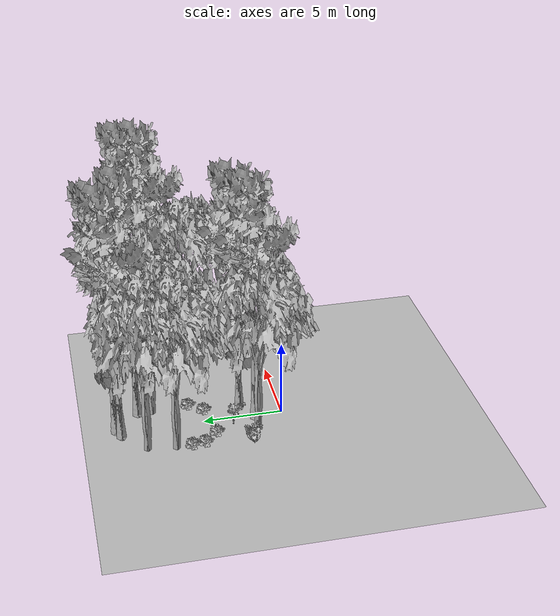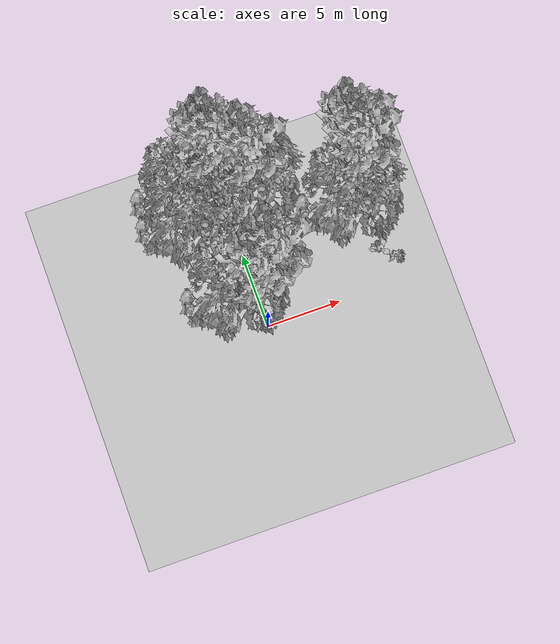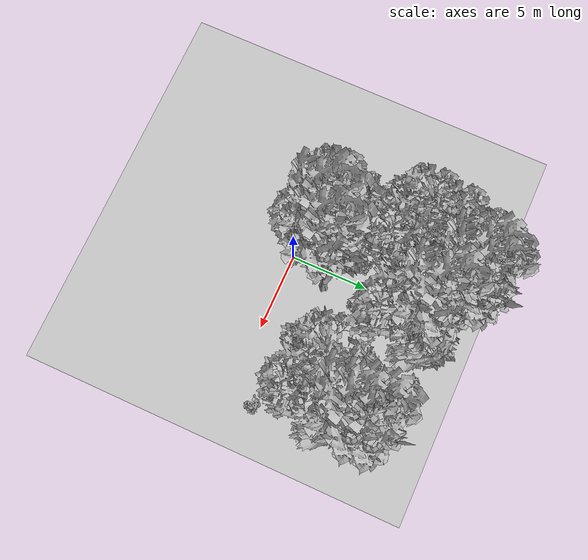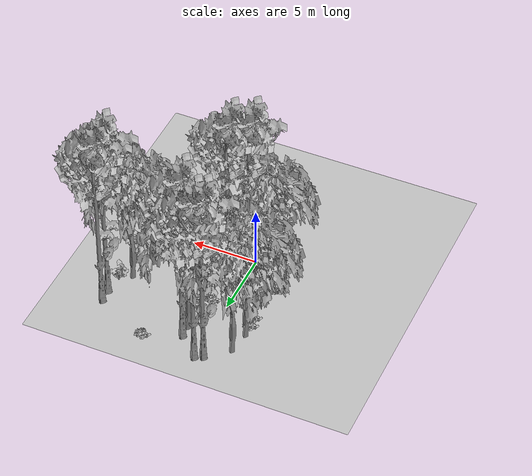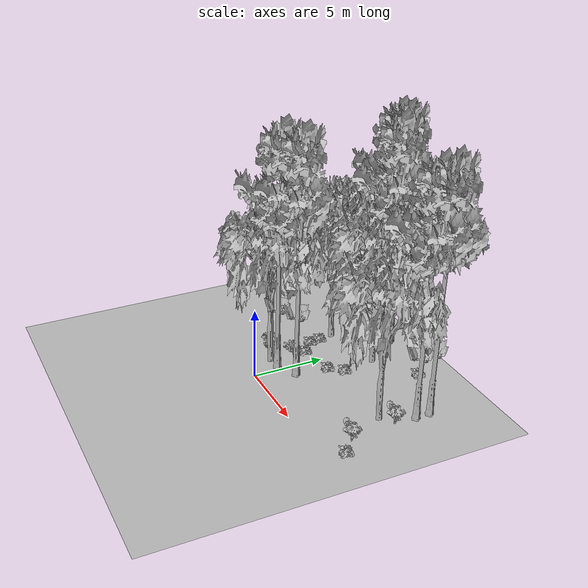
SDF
<sdf version="1.7">
 <world name="default">
  <model name="ground_plane">
   <static>1</static>
   <link name="link">
    <collision name="collision">
     <pose>-50 0 0 0 -0 0</pose>
     <geometry><plane><normal>0 0 1</normal><size>80 80</size></plane></geometry>
     <surface><contact><ode><min_depth>0.01</min_depth><max_vel>0</max_vel></ode></contact></surface>
    </collision>
    <visual name="grass">
     <cast_shadows>0</cast_shadows>
     <geometry>
      <mesh>
       <scale>0.46714285714285714 0.46714285714285714 0.1</scale>
       <uri>file://grass_plane/meshes/grass_plane.dae</uri>
      </mesh>
     </geometry>
    </visual>
   </link>
  </model>
  <model name="Tree 149">
   <static>1</static>
   <pose>-0.5941932935865069 10.240178936056516 0 1.57079 -0 0</pose>
   <link name="link">
    <collision name="collision">
     <geometry><mesh><scale>3.5 5 3.5</scale><uri>model://tree_9/meshes/tree_9.obj</uri></mesh></geometry>
    </collision>
    <visual name="visual">
     <geometry><mesh><scale>3.5 5 3.5</scale><uri>model://tree_9/meshes/tree_9.obj</uri></mesh></geometry>
    </visual>
   </link>
  </model>
  <model name="Tree 225">
   <static>1</static>
   <pose>-2.2592417376231566 8.790288998330588 0 1.57079 -0 0</pose>
   <link name="link">
    <collision name="collision">
     <geometry><mesh><scale>3.5 5 3.5</scale><uri>model://tree_2/meshes/tree_2.obj</uri></mesh></geometry>
    </collision>
    <visual name="visual">
     <geometry><mesh><scale>3.5 5 3.5</scale><uri>model://tree_2/meshes/tree_2.obj</uri></mesh></geometry>
    </visual>
   </link>
  </model>
  <model name="Tree 279">
   <static>1</static>
   <pose>-0.009671678535717376 10.534866226943848 0 1.57079 -0 0</pose>
   <link name="link">
    <collision name="collision">
     <geometry><mesh><scale>3.5 5 3.5</scale><uri>model://tree_9/meshes/tree_9.obj</uri></mesh></geometry>
    </collision>
    <visual name="visual">
     <geometry><mesh><scale>3.5 5 3.5</scale><uri>model://tree_9/meshes/tree_9.obj</uri></mesh></geometry>
    </visual>
   </link>
  </model>
  <model name="Tree 320">
   <static>1</static>
   <pose>8.431588983570713 8.203508705515901 0 1.57079 -0 0</pose>
   <link name="link">
    <collision name="collision">
     <geometry><mesh><scale>3.5 5 3.5</scale><uri>model://tree_9/meshes/tree_9.obj</uri></mesh></geometry>
    </collision>
    <visual name="visual">
     <geometry><mesh><scale>3.5 5 3.5</scale><uri>model://tree_9/meshes/tree_9.obj</uri></mesh></geometry>
    </visual>
   </link>
  </model>
  <model name="Tree 336">
   <static>1</static>
   <pose>-0.3128055057800694 1.80396919193808 0 1.57079 -0 0</pose>
   <link name="link">
    <collision name="collision">
     <geometry><mesh><scale>3.5 5 3.5</scale><uri>model://tree_9/meshes/tree_9.obj</uri></mesh></geometry>
    </collision>
    <visual name="visual">
     <geometry><mesh><scale>3.5 5 3.5</scale><uri>model://tree_9/meshes/tree_9.obj</uri></mesh></geometry>
    </visual>
   </link>
  </model>
  <model name="Tree 371">
   <static>1</static>
   <pose>-1.367864976883773 1.7509958166111232 0 1.57079 -0 0</pose>
   <link name="link">
    <collision name="collision">
     <geometry><mesh><scale>3.5 5 3.5</scale><uri>model://tree_2/meshes/tree_2.obj</uri></mesh></geometry>
    </collision>
    <visual name="visual">
     <geometry><mesh><scale>3.5 5 3.5</scale><uri>model://tree_2/meshes/tree_2.obj</uri></mesh></geometry>
    </visual>
   </link>
  </model>
  <model name="Tree 487">
   <static>1</static>
   <pose>1.041071343919313 2.544229207130101 0 1.57079 -0 0</pose>
   <link name="link">
    <collision name="collision">
     <geometry><mesh><scale>3.5 5 3.5</scale><uri>model://tree_9/meshes/tree_9.obj</uri></mesh></geometry>
    </collision>
    <visual name="visual">
     <geometry><mesh><scale>3.5 5 3.5</scale><uri>model://tree_9/meshes/tree_9.obj</uri></mesh></geometry>
    </visual>
   </link>
  </model>
  <model name="Tree 493">
   <static>1</static>
   <pose>1.6265196004110365 8.99907450048805 0 1.57079 -0 0</pose>
   <link name="link">
    <collision name="collision">
     <geometry><mesh><scale>3.5 5 3.5</scale><uri>model://tree_9/meshes/tree_9.obj</uri></mesh></geometry>
    </collision>
    <visual name="visual">
     <geometry><mesh><scale>3.5 5 3.5</scale><uri>model://tree_9/meshes/tree_9.obj</uri></mesh></geometry>
    </visual>
   </link>
  </model>
  <model name="Tree 540">
   <static>1</static>
   <pose>8.481989753266227 7.182654778823249 0 1.57079 -0 0</pose>
   <link name="link">
    <collision name="collision">
     <geometry><mesh><scale>3.5 5 3.5</scale><uri>model://tree_9/meshes/tree_9.obj</uri></mesh></geometry>
    </collision>
    <visual name="visual">
     <geometry><mesh><scale>3.5 5 3.5</scale><uri>model://tree_9/meshes/tree_9.obj</uri></mesh></geometry>
    </visual>
   </link>
  </model>
  <model name="Tree 565">
   <static>1</static>
   <pose>-2.5023248698135347 7.047159591923943 0 1.57079 -0 0</pose>
   <link name="link">
    <collision name="collision">
     <geometry><mesh><scale>3.5 5 3.5</scale><uri>model://tree_2/meshes/tree_2.obj</uri></mesh></geometry>
    </collision>
    <visual name="visual">
     <geometry><mesh><scale>3.5 5 3.5</scale><uri>model://tree_2/meshes/tree_2.obj</uri></mesh></geometry>
    </visual>
   </link>
  </model>
  <model name="Tree 572">
   <static>1</static>
   <pose>7.422313808809413 5.0595675325588445 0 1.57079 -0 0</pose>
   <link name="link">
    <collision name="collision">
     <geometry><mesh><scale>3.5 5 3.5</scale><uri>model://tree_2/meshes/tree_2.obj</uri></mesh></geometry>
    </collision>
    <visual name="visual">
     <geometry><mesh><scale>3.5 5 3.5</scale><uri>model://tree_2/meshes/tree_2.obj</uri></mesh></geometry>
    </visual>
   </link>
  </model>
  <model name="Tree 633">
   <static>1</static>
   <pose>1.554291082556226 8.034491570597496 0 1.57079 -0 0</pose>
   <link name="link">
    <collision name="collision">
     <geometry><mesh><scale>3.5 5 3.5</scale><uri>model://tree_2/meshes/tree_2.obj</uri></mesh></geometry>
    </collision>
    <visual name="visual">
     <geometry><mesh><scale>3.5 5 3.5</scale><uri>model://tree_2/meshes/tree_2.obj</uri></mesh></geometry>
    </visual>
   </link>
  </model>
  <model name="Bush 68">
   <static>1</static>
   <pose>4.3594910644890135 9.979164641847376 0 1.57079 -0 0</pose>
   <link name="link">
    <collision name="collision">
     <geometry><mesh><scale>2 2 2</scale><uri>model://bush_2/meshes/bush_2.obj</uri></mesh></geometry>
     <surface><contact><collide_without_contact>false</collide_without_contact></contact></surface>
    </collision>
    <visual name="visual">
     <geometry><mesh><scale>2 2 2</scale><uri>model://bush_2/meshes/bush_2.obj</uri></mesh></geometry>
    </visual>
   </link>
  </model>
  <model name="Bush 103">
   <static>1</static>
   <pose>8.350267291158183 5.7430233156477755 0 1.57079 -0 0</pose>
   <link name="link">
    <collision name="collision">
     <geometry><mesh><scale>2 2 2</scale><uri>model://bush_0/meshes/bush_0.obj</uri></mesh></geometry>
     <surface><contact><collide_without_contact>false</collide_without_contact></contact></surface>
    </collision>
    <visual name="visual">
     <geometry><mesh><scale>2 2 2</scale><uri>model://bush_0/meshes/bush_0.obj</uri></mesh></geometry>
    </visual>
   </link>
  </model>
  <model name="Bush 124">
   <static>1</static>
   <pose>9.61322048055186 1.5529849514655965 0 1.57079 -0 0</pose>
   <link name="link">
    <collision name="collision">
     <geometry><mesh><scale>2 2 2</scale><uri>model://bush_2/meshes/bush_2.obj</uri></mesh></geometry>
     <surface><contact><collide_without_contact>false</collide_without_contact></contact></surface>
    </collision>
    <visual name="visual">
     <geometry><mesh><scale>2 2 2</scale><uri>model://bush_2/meshes/bush_2.obj</uri></mesh></geometry>
    </visual>
   </link>
  </model>
  <model name="Bush 172">
   <static>1</static>
   <pose>-2.310380305861756 6.054693609798576 0 1.57079 -0 0</pose>
   <link name="link">
    <collision name="collision">
     <geometry><mesh><scale>2 2 2</scale><uri>model://bush_2/meshes/bush_2.obj</uri></mesh></geometry>
     <surface><contact><collide_without_contact>false</collide_without_contact></contact></surface>
    </collision>
    <visual name="visual">
     <geometry><mesh><scale>2 2 2</scale><uri>model://bush_2/meshes/bush_2.obj</uri></mesh></geometry>
    </visual>
   </link>
  </model>
  <model name="Bush 209">
   <static>1</static>
   <pose>1.9473116404003434 5.716288563757999 0 1.57079 -0 0</pose>
   <link name="link">
    <collision name="collision">
     <geometry><mesh><scale>2 2 2</scale><uri>model://bush_2/meshes/bush_2.obj</uri></mesh></geometry>
     <surface><contact><collide_without_contact>false</collide_without_contact></contact></surface>
    </collision>
    <visual name="visual">
     <geometry><mesh><scale>2 2 2</scale><uri>model://bush_2/meshes/bush_2.obj</uri></mesh></geometry>
    </visual>
   </link>
  </model>
  <model name="Bush 291">
   <static>1</static>
   <pose>-0.6352281886196636 3.2311511749800204 0 1.57079 -0 0</pose>
   <link name="link">
    <collision name="collision">
     <geometry><mesh><scale>2 2 2</scale><uri>model://bush_5/meshes/bush_5.obj</uri></mesh></geometry>
     <surface><contact><collide_without_contact>false</collide_without_contact></contact></surface>
    </collision>
    <visual name="visual">
     <geometry><mesh><scale>2 2 2</scale><uri>model://bush_5/meshes/bush_5.obj</uri></mesh></geometry>
    </visual>
   </link>
  </model>
  <model name="Bush 326">
   <static>1</static>
   <pose>8.74245503677129 2.4542426155057058 0 1.57079 -0 0</pose>
   <link name="link">
    <collision name="collision">
     <geometry><mesh><scale>2 2 2</scale><uri>model://bush_0/meshes/bush_0.obj</uri></mesh></geometry>
     <surface><contact><collide_without_contact>false</collide_without_contact></contact></surface>
    </collision>
    <visual name="visual">
     <geometry><mesh><scale>2 2 2</scale><uri>model://bush_0/meshes/bush_0.obj</uri></mesh></geometry>
    </visual>
   </link>
  </model>
  <model name="Bush 535">
   <static>1</static>
   <pose>-2.7711646061184254 2.296240735350601 0 1.57079 -0 0</pose>
   <link name="link">
    <collision name="collision">
     <geometry><mesh><scale>2 2 2</scale><uri>model://bush_4/meshes/bush_4.obj</uri></mesh></geometry>
     <surface><contact><collide_without_contact>false</collide_without_contact></contact></surface>
    </collision>
    <visual name="visual">
     <geometry><mesh><scale>2 2 2</scale><uri>model://bush_4/meshes/bush_4.obj</uri></mesh></geometry>
    </visual>
   </link>
  </model>
  <model name="Bush 557">
   <static>1</static>
   <pose>-2.2151410819566166 5.242743492494782 0 1.57079 -0 0</pose>
   <link name="link">
    <collision name="collision">
     <geometry><mesh><scale>2 2 2</scale><uri>model://bush_2/meshes/bush_2.obj</uri></mesh></geometry>
     <surface><contact><collide_without_contact>false</collide_without_contact></contact></surface>
    </collision>
    <visual name="visual">
     <geometry><mesh><scale>2 2 2</scale><uri>model://bush_2/meshes/bush_2.obj</uri></mesh></geometry>
    </visual>
   </link>
  </model>
  <model name="Bush 588">
   <static>1</static>
   <pose>1.2167775584436313 4.814304337965481 0 1.57079 -0 0</pose>
   <link name="link">
    <collision name="collision">
     <geometry><mesh><scale>2 2 2</scale><uri>model://bush_2/meshes/bush_2.obj</uri></mesh></geometry>
     <surface><contact><collide_without_contact>false</collide_without_contact></contact></surface>
    </collision>
    <visual name="visual">
     <geometry><mesh><scale>2 2 2</scale><uri>model://bush_2/meshes/bush_2.obj</uri></mesh></geometry>
    </visual>
   </link>
  </model>
  <model name="Bush 598">
   <static>1</static>
   <pose>-1.3034343493921057 4.389840262666283 0 1.57079 -0 0</pose>
   <link name="link">
    <collision name="collision">
     <geometry><mesh><scale>2 2 2</scale><uri>model://bush_2/meshes/bush_2.obj</uri></mesh></geometry>
     <surface><contact><collide_without_contact>false</collide_without_contact></contact></surface>
    </collision>
    <visual name="visual">
     <geometry><mesh><scale>2 2 2</scale><uri>model://bush_2/meshes/bush_2.obj</uri></mesh></geometry>
    </visual>
   </link>
  </model>
 </world>
</sdf>
